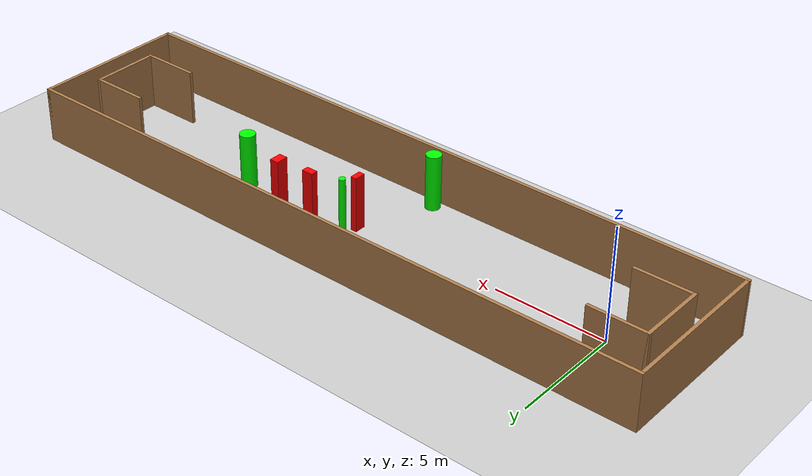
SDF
<sdf version="1.7">
 <world name="default">
  <light name="sun" type="directional">
   <pose>0 0 10 0 -0 0</pose>
   <diffuse>0.8 0.8 0.8 1</diffuse>
   <specular>0.2 0.2 0.2 1</specular>
   <attenuation>
    <range>1000</range>
    <constant>0.9</constant>
    <linear>0.01</linear>
    <quadratic>0.001</quadratic>
   </attenuation>
   <direction>-0.5 0.1 -0.9</direction>
   <spot><inner_angle>0</inner_angle><outer_angle>0</outer_angle><falloff>0</falloff></spot>
  </light>
  <model name="ground_plane">
   <static>1</static>
   <link name="link">
    <collision name="collision">
     <geometry><plane><normal>0 0 1</normal><size>100 100</size></plane></geometry>
     <surface>
      <contact><collide_bitmask>65535</collide_bitmask></contact>
      <friction><ode><mu>100</mu><mu2>50</mu2></ode></friction>
     </surface>
    </collision>
    <visual name="visual">
     <cast_shadows>0</cast_shadows>
     <geometry><plane><normal>0 0 1</normal><size>100 100</size></plane></geometry>
     <material>
      <script><uri>file://media/materials/scripts/gazebo.material</uri><name>Gazebo/Grey</name></script>
     </material>
    </visual>
   </link>
  </model>
  <gravity>0 0 -9.8</gravity>
  <magnetic_field>6e-06 2.3e-05 -4.2e-05</magnetic_field>
  <atmosphere type="adiabatic"/>
  <physics type="ode">
   <max_step_size>0.001</max_step_size>
   <real_time_factor>1</real_time_factor>
   <real_time_update_rate>1000</real_time_update_rate>
  </physics>
  <scene><ambient>0.4 0.4 0.4 1</ambient><background>0.7 0.7 0.7 1</background><shadows>1</shadows></scene>
  <spherical_coordinates>
   <surface_model>EARTH_WGS84</surface_model>
   <latitude_deg>0</latitude_deg>
   <longitude_deg>0</longitude_deg>
   <elevation>0</elevation>
   <heading_deg>0</heading_deg>
  </spherical_coordinates>
  <model name="my_base_walls">
   <link name="Wall_0">
    <collision name="Wall_0_Collision">
     <geometry><box><size>7.15 0.15 2.5</size></box></geometry>
     <pose>0 0 1.25 0 -0 0</pose>
    </collision>
    <visual name="Wall_0_Visual">
     <pose>0 0 1.25 0 -0 0</pose>
     <geometry><box><size>7.15 0.15 2.5</size></box></geometry>
     <material>
      <script><uri>file://media/materials/scripts/gazebo.material</uri><name>Gazebo/Wood</name></script>
      <ambient>1 1 1 1</ambient>
     </material>
     <meta><layer>0</layer></meta>
    </visual>
    <pose>-15 0 0 0 -0 1.5708</pose>
   </link>
   <link name="Wall_10">
    <collision name="Wall_10_Collision">
     <geometry><box><size>2.65 0.15 2.5</size></box></geometry>
     <pose>0 0 1.25 0 -0 0</pose>
    </collision>
    <visual name="Wall_10_Visual">
     <pose>0 0 1.25 0 -0 0</pose>
     <geometry><box><size>2.65 0.15 2.5</size></box></geometry>
     <material>
      <script><uri>file://media/materials/scripts/gazebo.material</uri><name>Gazebo/Wood</name></script>
      <ambient>1 1 1 1</ambient>
     </material>
     <meta><layer>0</layer></meta>
    </visual>
    <pose>-12.75 -1.5 0 0 -0 0</pose>
   </link>
   <link name="Wall_12">
    <collision name="Wall_12_Collision">
     <geometry><box><size>2.65 0.15 2.5</size></box></geometry>
     <pose>0 0 1.25 0 -0 0</pose>
    </collision>
    <visual name="Wall_12_Visual">
     <pose>0 0 1.25 0 -0 0</pose>
     <geometry><box><size>2.65 0.15 2.5</size></box></geometry>
     <material>
      <script><uri>file://media/materials/scripts/gazebo.material</uri><name>Gazebo/Wood</name></script>
      <ambient>1 1 1 1</ambient>
     </material>
     <meta><layer>0</layer></meta>
    </visual>
    <pose>-12.75 1.5 0 0 -0 0</pose>
   </link>
   <link name="Wall_14">
    <collision name="Wall_14_Collision">
     <geometry><box><size>3.15 0.15 2.5</size></box></geometry>
     <pose>0 0 1.25 0 -0 0</pose>
    </collision>
    <visual name="Wall_14_Visual">
     <pose>0 0 1.25 0 -0 0</pose>
     <geometry><box><size>3.15 0.15 2.5</size></box></geometry>
     <material>
      <script><uri>file://media/materials/scripts/gazebo.material</uri><name>Gazebo/Wood</name></script>
      <ambient>1 1 1 1</ambient>
     </material>
     <meta><layer>0</layer></meta>
    </visual>
    <pose>14 0 0 0 -0 -1.5708</pose>
   </link>
   <link name="Wall_15">
    <collision name="Wall_15_Collision">
     <geometry><box><size>2.65 0.15 2.5</size></box></geometry>
     <pose>0 0 1.25 0 -0 0</pose>
    </collision>
    <visual name="Wall_15_Visual">
     <pose>0 0 1.25 0 -0 0</pose>
     <geometry><box><size>2.65 0.15 2.5</size></box></geometry>
     <material>
      <script><uri>file://media/materials/scripts/gazebo.material</uri><name>Gazebo/Wood</name></script>
      <ambient>1 1 1 1</ambient>
     </material>
     <meta><layer>0</layer></meta>
    </visual>
    <pose>12.75 -1.5 0 0 -0 3.14159</pose>
   </link>
   <link name="Wall_17">
    <collision name="Wall_17_Collision">
     <geometry><box><size>2.65 0.15 2.5</size></box></geometry>
     <pose>0 0 1.25 0 -0 0</pose>
    </collision>
    <visual name="Wall_17_Visual">
     <pose>0 0 1.25 0 -0 0</pose>
     <geometry><box><size>2.65 0.15 2.5</size></box></geometry>
     <material>
      <script><uri>file://media/materials/scripts/gazebo.material</uri><name>Gazebo/Wood</name></script>
      <ambient>1 1 1 1</ambient>
     </material>
     <meta><layer>0</layer></meta>
    </visual>
    <pose>12.75 1.5 0 0 -0 3.14159</pose>
   </link>
   <link name="Wall_2">
    <collision name="Wall_2_Collision">
     <geometry><box><size>30.15 0.15 2.5</size></box></geometry>
     <pose>0 0 1.25 0 -0 0</pose>
    </collision>
    <visual name="Wall_2_Visual">
     <pose>0 0 1.25 0 -0 0</pose>
     <geometry><box><size>30.15 0.15 2.5</size></box></geometry>
     <material>
      <script><uri>file://media/materials/scripts/gazebo.material</uri><name>Gazebo/Wood</name></script>
      <ambient>1 1 1 1</ambient>
     </material>
     <meta><layer>0</layer></meta>
    </visual>
    <pose>-0 -3.5 0 0 -0 0</pose>
   </link>
   <link name="Wall_4">
    <collision name="Wall_4_Collision">
     <geometry><box><size>30.15 0.15 2.5</size></box></geometry>
     <pose>0 0 1.25 0 -0 0</pose>
    </collision>
    <visual name="Wall_4_Visual">
     <pose>0 0 1.25 0 -0 0</pose>
     <geometry><box><size>30.15 0.15 2.5</size></box></geometry>
     <material>
      <script><uri>file://media/materials/scripts/gazebo.material</uri><name>Gazebo/Wood</name></script>
      <ambient>1 1 1 1</ambient>
     </material>
     <meta><layer>0</layer></meta>
    </visual>
    <pose>-0 3.5 0 0 -0 0</pose>
   </link>
   <link name="Wall_6">
    <collision name="Wall_6_Collision">
     <geometry><box><size>7.15 0.15 2.5</size></box></geometry>
     <pose>0 0 1.25 0 -0 0</pose>
    </collision>
    <visual name="Wall_6_Visual">
     <pose>0 0 1.25 0 -0 0</pose>
     <geometry><box><size>7.15 0.15 2.5</size></box></geometry>
     <material>
      <script><uri>file://media/materials/scripts/gazebo.material</uri><name>Gazebo/Wood</name></script>
      <ambient>1 1 1 1</ambient>
     </material>
     <meta><layer>0</layer></meta>
    </visual>
    <pose>15 0 0 0 -0 -1.5708</pose>
   </link>
   <link name="Wall_9">
    <collision name="Wall_9_Collision">
     <geometry><box><size>3.15 0.15 2.5</size></box></geometry>
     <pose>0 0 1.25 0 -0 0</pose>
    </collision>
    <visual name="Wall_9_Visual">
     <pose>0 0 1.25 0 -0 0</pose>
     <geometry><box><size>3.15 0.15 2.5</size></box></geometry>
     <material>
      <script><uri>file://media/materials/scripts/gazebo.material</uri><name>Gazebo/Wood</name></script>
      <ambient>1 1 1 1</ambient>
     </material>
     <meta><layer>0</layer></meta>
    </visual>
    <pose>-14 0 0 0 -0 -1.5708</pose>
   </link>
   <static>1</static>
   <pose>11.5 0 0 0 -0 0</pose>
  </model>
  <model name="cylinder1">
   <static>1</static>
   <link name="link">
    <inertial>
     <mass>1</mass>
     <inertia><ixx>0.5</ixx><ixy>0</ixy><ixz>0</ixz><iyy>0.5</iyy><iyz>0</iyz><izz>1</izz></inertia>
    </inertial>
    <collision name="collision">
     <geometry><cylinder><radius>0.3457911519405277</radius><length>2.5</length></cylinder></geometry>
    </collision>
    <visual name="visual">
     <geometry><cylinder><radius>0.3457911519405277</radius><length>2.5</length></cylinder></geometry>
     <material>
      <ambient>0 1 0 1</ambient>
      <diffuse>0 1 0 1</diffuse>
      <specular>0.1 0.1 0.1 1</specular>
      <emissive>0 0 0 0</emissive>
     </material>
    </visual>
   </link>
   <pose>17.35415113475297 0.6863077368639585 1.25 0 0 0</pose>
  </model>
  <model name="cylinder2">
   <static>1</static>
   <link name="link">
    <inertial>
     <mass>1</mass>
     <inertia><ixx>0.5</ixx><ixy>0</ixy><ixz>0</ixz><iyy>0.5</iyy><iyz>0</iyz><izz>1</izz></inertia>
    </inertial>
    <collision name="collision">
     <geometry><cylinder><radius>0.33516371356032876</radius><length>2.5</length></cylinder></geometry>
    </collision>
    <visual name="visual">
     <geometry><cylinder><radius>0.33516371356032876</radius><length>2.5</length></cylinder></geometry>
     <material>
      <ambient>0 1 0 1</ambient>
      <diffuse>0 1 0 1</diffuse>
      <specular>0.1 0.1 0.1 1</specular>
      <emissive>0 0 0 0</emissive>
     </material>
    </visual>
   </link>
   <pose>10.494601463216181 -3.0037694106499004 1.25 0 0 0</pose>
  </model>
  <model name="cylinder3">
   <static>1</static>
   <link name="link">
    <inertial>
     <mass>1</mass>
     <inertia><ixx>0.5</ixx><ixy>0</ixy><ixz>0</ixz><iyy>0.5</iyy><iyz>0</iyz><izz>1</izz></inertia>
    </inertial>
    <collision name="collision">
     <geometry><cylinder><radius>0.15063378584475054</radius><length>2.5</length></cylinder></geometry>
    </collision>
    <visual name="visual">
     <geometry><cylinder><radius>0.15063378584475054</radius><length>2.5</length></cylinder></geometry>
     <material>
      <ambient>0 1 0 1</ambient>
      <diffuse>0 1 0 1</diffuse>
      <specular>0.1 0.1 0.1 1</specular>
      <emissive>0 0 0 0</emissive>
     </material>
    </visual>
   </link>
   <pose>12.072444867789327 0.7948679035449313 1.25 0 0 0</pose>
  </model>
  <model name="box1">
   <static>1</static>
   <link name="link">
    <inertial>
     <mass>1</mass>
     <inertia><ixx>0.083</ixx><ixy>0</ixy><ixz>0</ixz><iyy>0.083</iyy><iyz>0</iyz><izz>0.083</izz></inertia>
    </inertial>
    <collision name="collision">
     <geometry><box><size>0.3936146312570944 0.5575118772967547 2.5</size></box></geometry>
    </collision>
    <visual name="visual">
     <geometry><box><size>0.3936146312570944 0.5575118772967547 2.5</size></box></geometry>
     <material>
      <ambient>1 0 0 1</ambient>
      <diffuse>1 0 0 1</diffuse>
      <specular>0.1 0.1 0.1 1</specular>
      <emissive>0 0 0 0</emissive>
     </material>
    </visual>
    <sensor name="my_contact" type="contact">
     <contact><collision>box_collision</collision><topic>__default_topic__</topic></contact>
    </sensor>
   </link>
   <pose>15.023758073624773 1.2964952764399102 1.25 0 0 0</pose>
  </model>
  <model name="box2">
   <static>1</static>
   <link name="link">
    <inertial>
     <mass>1</mass>
     <inertia><ixx>0.083</ixx><ixy>0</ixy><ixz>0</ixz><iyy>0.083</iyy><iyz>0</iyz><izz>0.083</izz></inertia>
    </inertial>
    <collision name="collision">
     <geometry><box><size>0.27422874195022773 0.5050929649347369 2.5</size></box></geometry>
    </collision>
    <visual name="visual">
     <geometry><box><size>0.27422874195022773 0.5050929649347369 2.5</size></box></geometry>
     <material>
      <ambient>1 0 0 1</ambient>
      <diffuse>1 0 0 1</diffuse>
      <specular>0.1 0.1 0.1 1</specular>
      <emissive>0 0 0 0</emissive>
     </material>
    </visual>
    <sensor name="my_contact" type="contact">
     <contact><collision>box_collision</collision><topic>__default_topic__</topic></contact>
    </sensor>
   </link>
   <pose>11.770667262050234 0.22034859069642954 1.25 0 0 0</pose>
  </model>
  <model name="box3">
   <static>1</static>
   <link name="link">
    <inertial>
     <mass>1</mass>
     <inertia><ixx>0.083</ixx><ixy>0</ixy><ixz>0</ixz><iyy>0.083</iyy><iyz>0</iyz><izz>0.083</izz></inertia>
    </inertial>
    <collision name="collision">
     <geometry><box><size>0.5091039253166302 0.31572090423882615 2.5</size></box></geometry>
    </collision>
    <visual name="visual">
     <geometry><box><size>0.5091039253166302 0.31572090423882615 2.5</size></box></geometry>
     <material>
      <ambient>1 0 0 1</ambient>
      <diffuse>1 0 0 1</diffuse>
      <specular>0.1 0.1 0.1 1</specular>
      <emissive>0 0 0 0</emissive>
     </material>
    </visual>
    <sensor name="my_contact" type="contact">
     <contact><collision>box_collision</collision><topic>__default_topic__</topic></contact>
    </sensor>
   </link>
   <pose>13.441260076065607 1.1890974587729568 1.25 0 0 0</pose>
  </model>
 </world>
</sdf>
